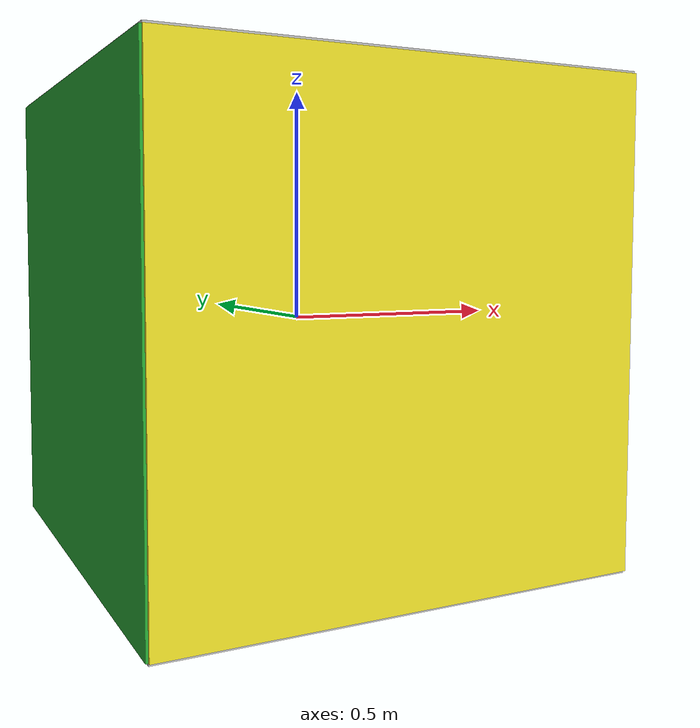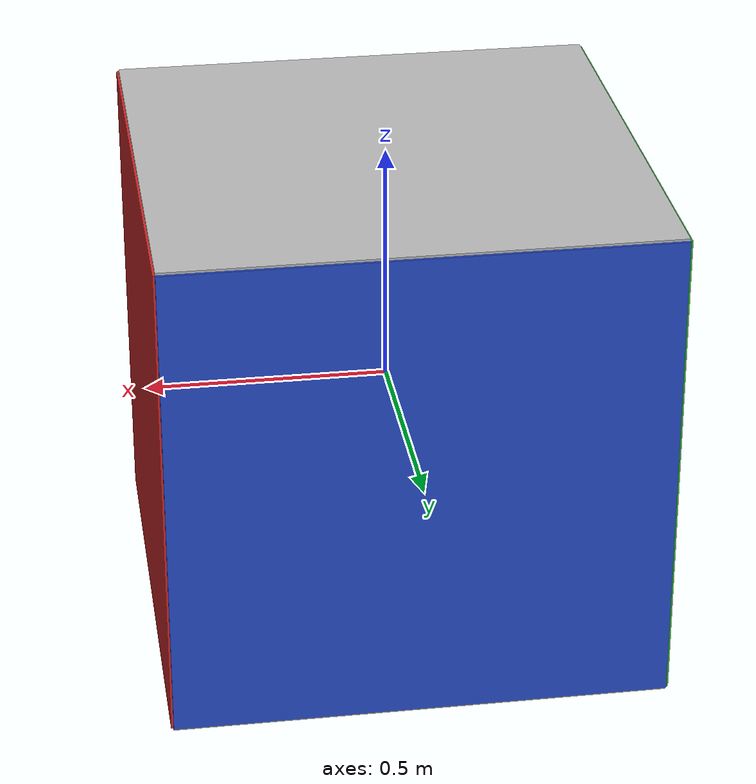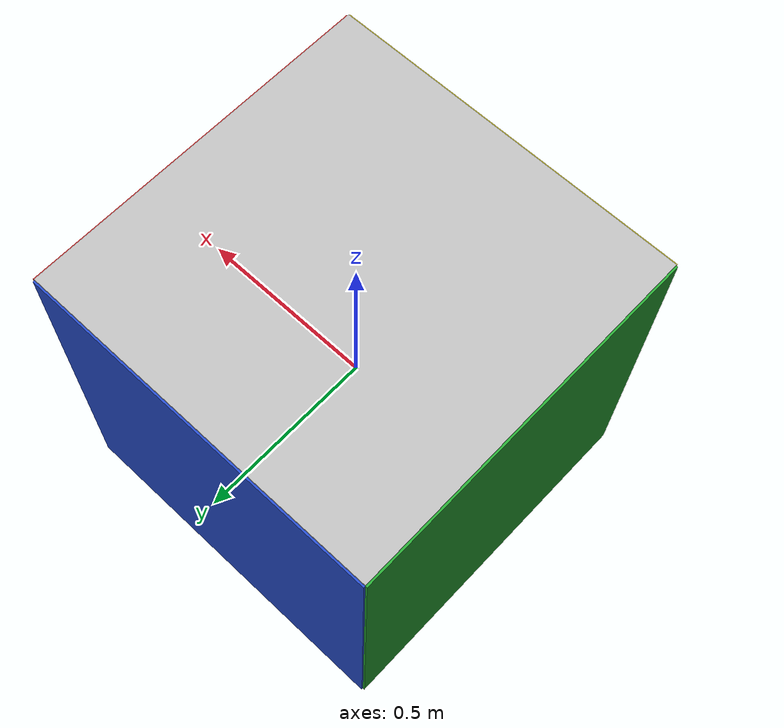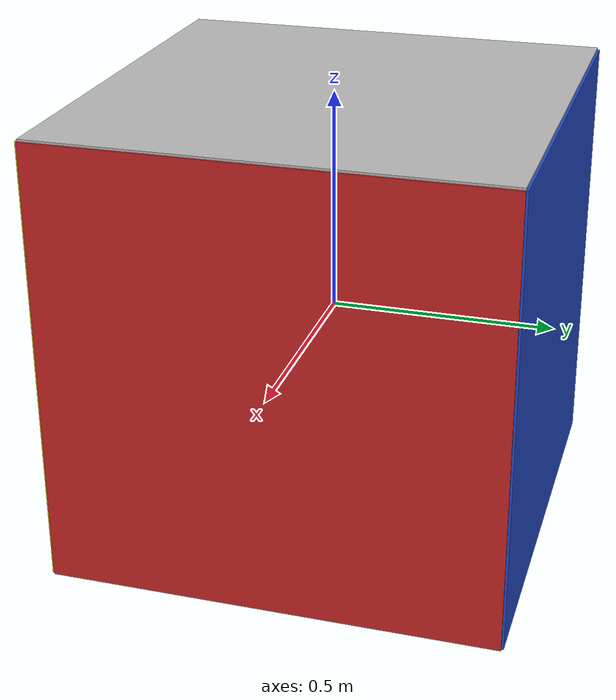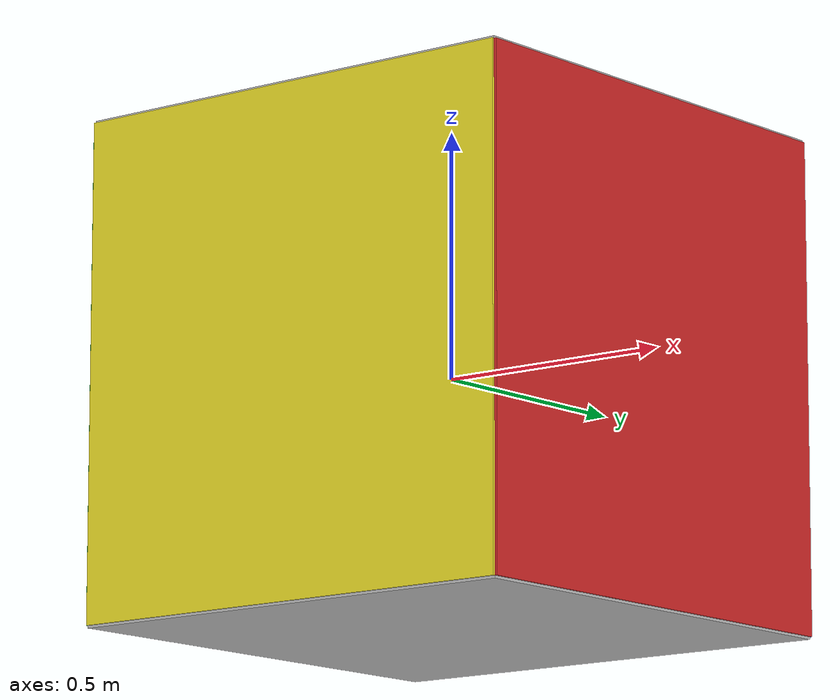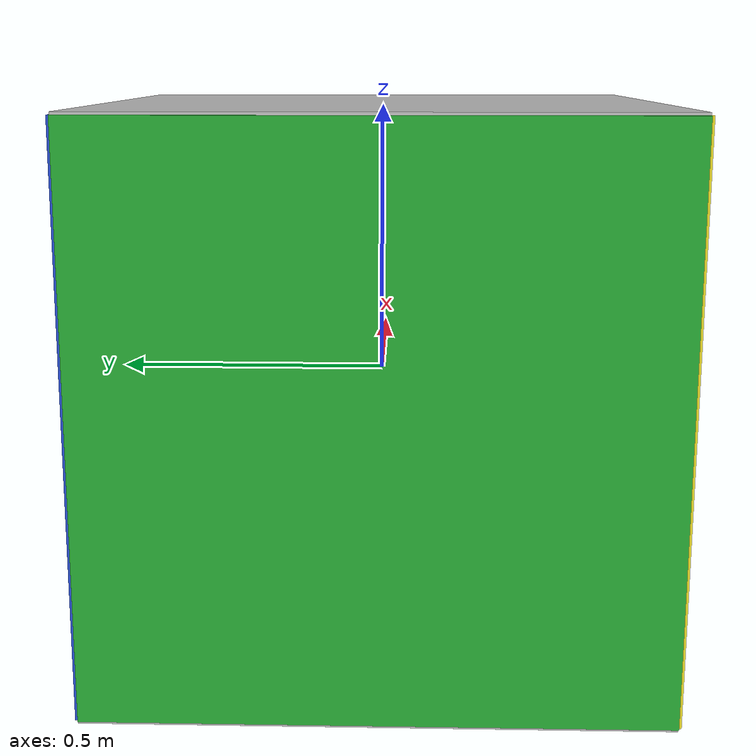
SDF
<?xml version='1.0'?>
<sdf version='1.6'>
  <model name='colored_box'>
    <static>true</static>
    <link name='link'>
      <collision name='collision'>
        <geometry>
          <box>
            <size>1 1 1</size>
          </box>
        </geometry>
      </collision>

      <!-- Front face (Red) -->
      <visual name='face_front'>
        <pose>0.5 0 0 0 0 0</pose>
        <geometry>
          <box>
            <size>0.01 1 1</size>
          </box>
        </geometry>
        <material>
          <script>
            <uri>model://colored_box/materials/scripts</uri>
            <name>Gazebo/Red</name>
          </script>
        </material>
      </visual>

      <!-- Back face (Green) -->
      <visual name='face_back'>
        <pose>-0.5 0 0 0 0 0</pose>
        <geometry>
          <box>
            <size>0.01 1 1</size>
          </box>
        </geometry>
        <material>
          <script>
            <uri>model://colored_box/materials/scripts</uri>
            <name>Gazebo/Green</name>
          </script>
        </material>
      </visual>

      <!-- Right face (Blue) -->
      <visual name='face_right'>
        <pose>0 0.5 0 0 0 0</pose>
        <geometry>
          <box>
            <size>1 0.01 1</size>
          </box>
        </geometry>
        <material>
          <script>
            <uri>model://colored_box/materials/scripts</uri>
            <name>Gazebo/Blue</name>
          </script>
        </material>
      </visual>

      <!-- Left face (Yellow) -->
      <visual name='face_left'>
        <pose>0 -0.5 0 0 0 0</pose>
        <geometry>
          <box>
            <size>1 0.01 1</size>
          </box>
        </geometry>
        <material>
          <script>
            <uri>model://colored_box/materials/scripts</uri>
            <name>Gazebo/Yellow</name>
          </script>
        </material>
      </visual>

      <!-- Top face (default gray) -->
      <visual name='face_top'>
        <pose>0 0 0.5 0 0 0</pose>
        <geometry>
          <box>
            <size>1 1 0.01</size>
          </box>
        </geometry>
      </visual>

      <!-- Bottom face (default gray) -->
      <visual name='face_bottom'>
        <pose>0 0 -0.5 0 0 0</pose>
        <geometry>
          <box>
            <size>1 1 0.01</size>
          </box>
        </geometry>
      </visual>
    </link>
  </model>
</sdf>
